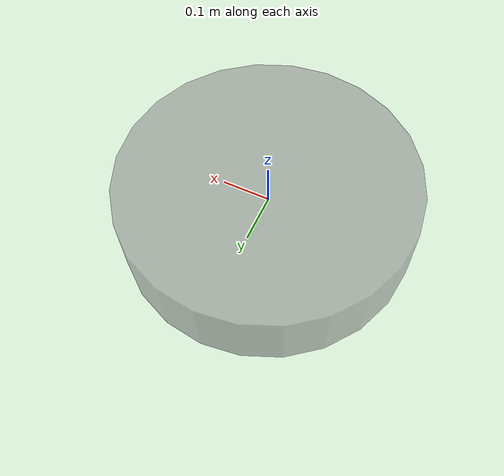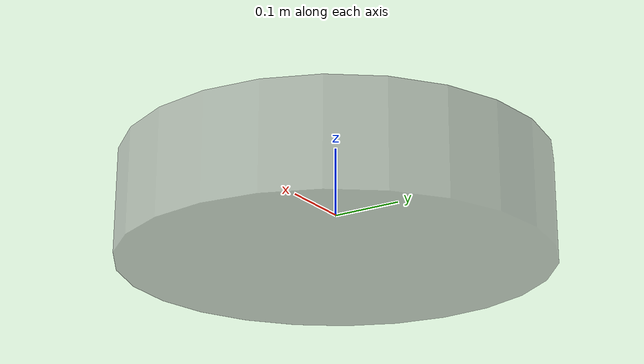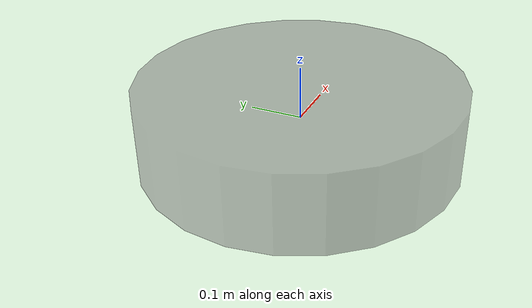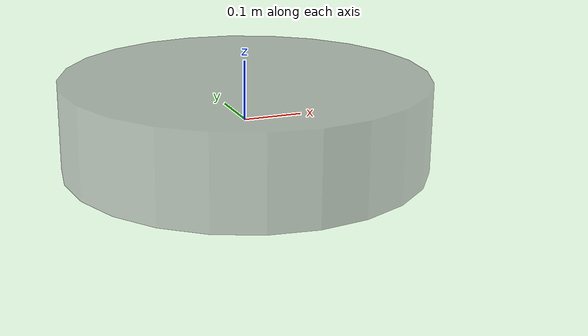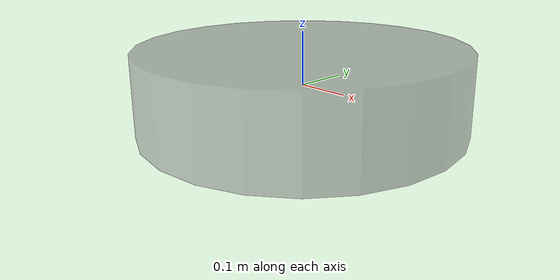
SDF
<?xml version="1.0" ?>
<sdf version="1.6">

  <model name="pothole">
  <pose>0 0 0 0 0 0</pose>
  <static>true</static>
  <link name="link">
    <inertial>
      <pose>0 0 0 0 0 0</pose>
      <mass>1</mass>
      <inertia>
        <ixx>1</ixx>
        <iyy>1</iyy>
        <izz>1</izz>
        <ixy>0</ixy>
        <ixz>0</ixz>
      </inertia>
    </inertial>
      <visual name='visual'>
        <geometry>
          <cylinder>
            <radius>.305</radius>
            <length>0.15</length>
          </cylinder>
        </geometry>
        <material>
          <ambient>0.6 0.6 0.6 0.6</ambient>
          <diffuse>0.5 0.5 0.5 0.5</diffuse>
          <specular>0.5 0.5 0.5 0.5</specular>
          <emissive>0 0 0 0</emissive>
        </material>
      </visual>
      <collision name='collision'>
        <geometry>
          <cylinder>
            <radius>.305</radius>
            <length>0.15</length>
          </cylinder>
        </geometry>
    </collision>
  </link>
  </model>

</sdf>
